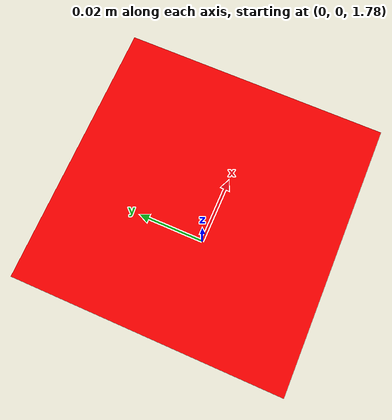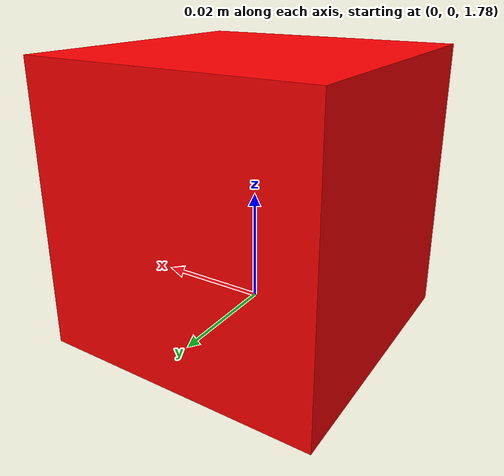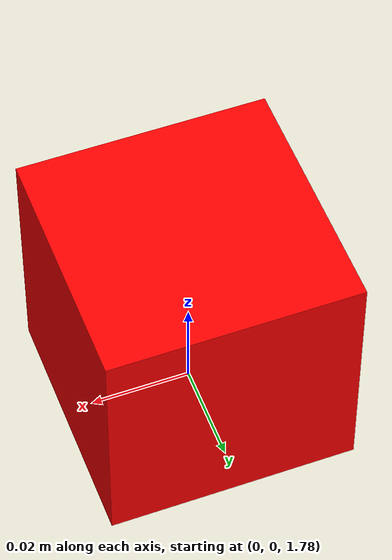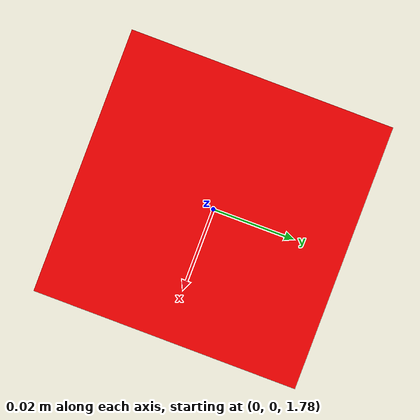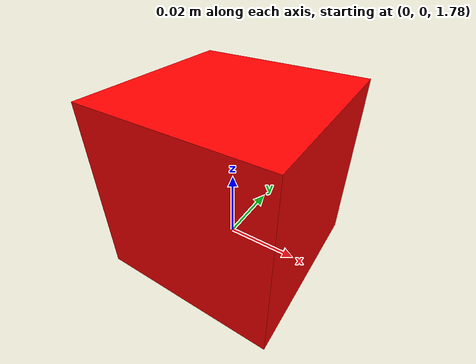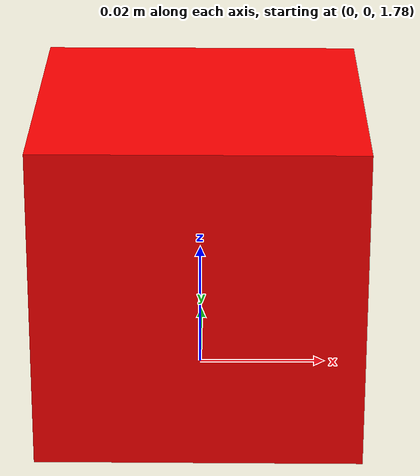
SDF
<?xml version="1.0" ?>
<sdf version="1.9">
  <world name="inspection_world">

    <plugin filename="ignition-gazebo-physics-system"
            name="ignition::gazebo::systems::Physics"/>
    <plugin filename="ignition-gazebo-user-commands-system"
            name="ignition::gazebo::systems::UserCommands"/>
    <plugin filename="ignition-gazebo-scene-broadcaster-system"
            name="ignition::gazebo::systems::SceneBroadcaster"/>
    <plugin filename="ignition-gazebo-sensors-system"
            name="ignition::gazebo::systems::Sensors">
      <render_engine>ogre2</render_engine>
    </plugin>

    <light type="directional" name="sun">
      <cast_shadows>false</cast_shadows>
      <pose>0 0 10 0 0 0</pose>
      <diffuse>1 1 1 1</diffuse>
      <specular>0 0 0 1</specular>
      <direction>-0.5 0.1 -1</direction>
      <ambient>0.8 0.8 0.8 1</ambient>
      <background>0.7 0.7 0.7 1</background>
    </light>

    <model name="ground_plane">
      <static>true</static>
      <link name="link">
        <collision name="collision">
          <geometry>
            <plane>
              <normal>0 0 1</normal>
              <size>5 5</size>
            </plane>
          </geometry>
        </collision>
        <visual name="visual">
          <geometry>
            <plane>
              <normal>0 0 1</normal>
              <size>5 5</size>
            </plane>
          </geometry>
          <material>
            <ambient>0.9 0.9 0.9 1</ambient>
            <diffuse>0.9 0.9 0.9 1</diffuse>
          </material>
        </visual>
      </link>
    </model>

    <model name="inspection_board">
      <static>true</static>
      <pose>0 0 0.01 0 0 0</pose>
      <link name="link">
        <collision name="collision">
          <geometry>
            <box>
              <size>1.5 1.5 0.02</size>
            </box>
          </geometry>
        </collision>
        <visual name="visual">
          <geometry>
            <box>
              <size>1.5 1.5 0.02</size>
            </box>
          </geometry>
          <material>
            <ambient>0.2 0.2 0.2 1</ambient>
            <diffuse>0.2 0.2 0.2 1</diffuse>
          </material>
        </visual>
      </link>
    </model>

    <model name="overhead_camera">
      <static>true</static>
      <pose>0 0 1.8 0 1.5708 0</pose>
      <link name="camera_link">
        <visual name="camera_body">
          <geometry>
            <box>
              <size>0.05 0.05 0.05</size>
            </box>
          </geometry>
          <material>
            <ambient>1 0 0 1</ambient>
            <diffuse>1 0 0 1</diffuse>
          </material>
        </visual>

        <sensor name="inspection_camera" type="camera">
          <always_on>1</always_on>
          <update_rate>10</update_rate>
          <topic>/inspection_camera</topic>
          <camera>
            <horizontal_fov>1.2</horizontal_fov>
            <image>
              <width>1280</width>
              <height>720</height>
              <format>R8G8B8</format>
            </image>
            <clip>
              <near>0.01</near>
              <far>10.0</far>
            </clip>
          </camera>
          <visualize>true</visualize>
        </sensor>
      </link>
    </model>

  </world>
</sdf>
